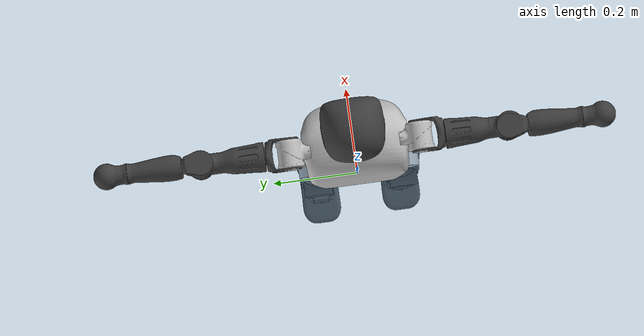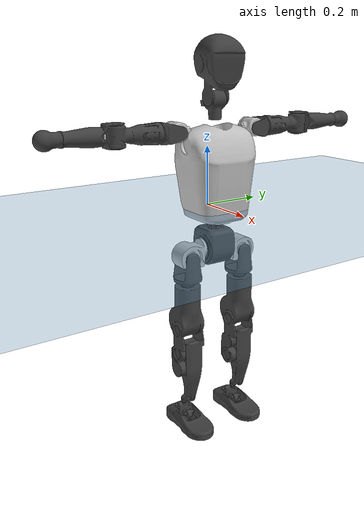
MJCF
<mujoco model="T1">
  <compiler angle="radian" assetdir="assets" balanceinertia="true" inertiafromgeom="false"/>

  <option timestep="0.005" density="1.2" viscosity="2e-05"/>

  <size nkey="1"/>

  <visual>
    <quality shadowsize="8192"/>
    <map shadowclip="0.5"/>
  </visual>

  <default>
    <default class="/">
      <joint armature="0.01" damping="0.01" frictionloss="0.1"/>
      <geom contype="0" conaffinity="0" group="1" solref="-1000 -80"/>
      <site size="0.01 0.005 0.005" group="5"/>
      <general forcelimited="true" biastype="affine" gainprm="25" biasprm="0 -25 -0.6"/>
      <default class="t1">
        <geom rgba="0.25 0.25 0.25 1"/>
        <default class="visual">
          <geom type="mesh" group="2"/>
        </default>
        <default class="collision">
          <geom group="3"/>
        </default>
        <default class="foot">
          <geom size="0.1115 0.05 0.015" type="box" condim="6" group="4" priority="1" solimp="0.015 1 0.015"/>
        </default>
        <default class="reward_collision_sphere">
          <geom group="5" rgba="1 0 0 1"/>
        </default>
      </default>
    </default>
  </default>

  <asset>
    <texture type="skybox" colorspace="auto" name="//unnamed_texture_0" builtin="gradient" rgb1="0.95 0.95 0.95" rgb2="0.95 0.95 0.95" width="100" height="600"/>
    <texture type="2d" colorspace="auto" name="texplane" builtin="checker" rgb1="0.345 0.575 0.748" rgb2="0.345 0.575 0.748" markrgb="1 1 1" width="512" height="512"/>
    <material name="MatPlane" class="/" texture="texplane" texuniform="true" texrepeat="2 2" specular="0.9"/>
    <mesh name="Trunk" class="/" file="Trunk.stl"/>
    <mesh name="H1" class="/" file="H1.stl"/>
    <mesh name="H2" class="/" file="H2.stl"/>
    <mesh name="AL1" class="/" file="AL1.stl"/>
    <mesh name="AL2" class="/" file="AL2.stl"/>
    <mesh name="AL3" class="/" file="AL3.stl"/>
    <mesh name="left_hand_link" class="/" file="left_hand_link.stl"/>
    <mesh name="AR1" class="/" file="AR1.stl"/>
    <mesh name="AR2" class="/" file="AR2.stl"/>
    <mesh name="AR3" class="/" file="AR3.stl"/>
    <mesh name="right_hand_link" class="/" file="right_hand_link.stl"/>
    <mesh name="Waist" class="/" file="Waist.stl"/>
    <mesh name="Hip_Pitch_Left" class="/" file="Hip_Pitch_Left.stl"/>
    <mesh name="Hip_Roll_Left" class="/" file="Hip_Roll_Left.stl"/>
    <mesh name="Hip_Yaw_Left" class="/" file="Hip_Yaw_Left.stl"/>
    <mesh name="Shank_Left" class="/" file="Shank_Left.stl"/>
    <mesh name="Ankle_Cross_Left" class="/" file="Ankle_Cross_Left.stl"/>
    <mesh name="left_foot_link" class="/" file="left_foot_link.stl"/>
    <mesh name="Hip_Pitch_Right" class="/" file="Hip_Pitch_Right.stl"/>
    <mesh name="Hip_Roll_Right" class="/" file="Hip_Roll_Right.stl"/>
    <mesh name="Hip_Yaw_Right" class="/" file="Hip_Yaw_Right.stl"/>
    <mesh name="Shank_Right" class="/" file="Shank_Right.stl"/>
    <mesh name="Ankle_Cross_Right" class="/" file="Ankle_Cross_Right.stl"/>
    <mesh name="right_foot_link" class="/" file="right_foot_link.stl"/>
  </asset>

  <worldbody>
    <geom name="floor" class="/" size="100 100 0.125" type="plane" group="0" material="MatPlane"/>
    <light name="toplight_shadow" class="/" pos="0 0 5" dir="0.0990148 0.0990148 -0.990148" type="directional" ambient="0.04 0.04 0.04" diffuse="0.55 0.55 0.55" specular="0.12 0.12 0.12"/>
    <light name="toplight_fill" class="/" pos="0 0 5" dir="0.0990148 0.0990148 -0.990148" type="directional" castshadow="false" ambient="0.04 0.04 0.04" diffuse="0.3 0.3 0.3" specular="0.08 0.08 0.08"/>
    <body name="trunk" childclass="t1" pos="0.000501452 -0.00220653 -0.000245958" quat="0.999999 -0.000925616 -0.000120313 -0.000683078">
      <inertial pos="0.0376198 -0.0035692 0.123278" quat="0.999953 -0.000711696 -0.00891287 -0.00385884" mass="10.0808" diaginertia="0.0203892 0.0617509 0.129281"/>
      <joint name="//unnamed_joint_0" type="free" armature="0" damping="0" frictionloss="0"/>
      <geom name="//unnamed_geom_1" class="visual" rgba="0.76 0.76 0.76 1" mesh="Trunk"/>
      <geom name="//unnamed_geom_2" class="collision" size="0.0724099 0.0965465 0.14482" pos="0.0444575 0 0.142912" type="box"/>
      <geom name="//unnamed_geom_3" class="reward_collision_sphere" size="0.111029" pos="0.0444575 0 0.119094"/>
      <geom name="//unnamed_geom_4" class="reward_collision_sphere" size="0.014482" pos="0.0444575 0.0819826 0"/>
      <geom name="//unnamed_geom_5" class="reward_collision_sphere" size="0.014482" pos="0.0444575 -0.0819826 0"/>
      <geom name="//unnamed_geom_6" class="reward_collision_sphere" size="0.014482" pos="0.0444575 0.103202 0.214368"/>
      <geom name="//unnamed_geom_7" class="reward_collision_sphere" size="0.014482" pos="0.0444575 -0.103202 0.214368"/>
      <site name="imu" pos="0.0140073 -0.00118108 -0.014023" size="0.00965465"/>
      <camera name="track" pos="0 -1.929 0" quat="0.707107 0.707107 0 0" mode="trackcom"/>
      <camera name="ego_camera" pos="0.090397 0 0.500193" quat="-0.5 -0.5 0.5 0.5"/>
      <body name="H1" pos="0.0431808 0.00173706 0.290335" quat="1 -0.000437557 -0.000381181 0.000389073">
        <inertial pos="-0.00397278 0.000553362 0.0703052" quat="0.77014 -0.0157598 -0.00460045 0.637663" mass="0.40589" diaginertia="5.4794e-05 0.000185765 0.000340353"/>
        <joint name="AAHead_yaw" pos="0 0 0" axis="0.0101603 -0.0046824 0.999937" stiffness="0.00570287" range="-1.57963 1.58668" armature="0.00835278" damping="0.0110557" frictionloss="0.0954781"/>
        <geom name="//unnamed_geom_8" class="visual" mesh="H1"/>
        <body name="H2" pos="0.00183761 0.0020611 0.07223" quat="1 -9.17164e-05 0.000340404 5.53381e-05">
          <inertial pos="0.00730001 0.00334207 0.118226" quat="0.988426 0.104184 -0.0739158 -0.0818252" mass="0.575461" diaginertia="0.0004751 0.00163601 0.00416171"/>
          <joint name="Head_pitch" pos="0 0 0" axis="0.000274704 -0.999965 0.00834654" stiffness="0.000171727" range="-1.22383 0.348349" armature="0.00858324" damping="0.0108473" frictionloss="0.10356"/>
          <geom name="//unnamed_geom_9" class="visual" mesh="H2"/>
          <geom name="//unnamed_geom_10" class="collision" size="0.0772372" pos="0.00740959 0 0.131003"/>
          <geom name="//unnamed_geom_11" class="reward_collision_sphere" size="0.0868919" pos="0.0148192 0 0.119094"/>
        </body>
      </body>
      <body name="AL1" pos="0.0423272 0.103803 0.259017" quat="1 -0.000115246 0.000226726 -7.87153e-05">
        <inertial pos="-0.00283128 0.0419525 -0.000328016" quat="0.508163 0.49243 -0.504389 0.494849" mass="0.479261" diaginertia="0.000310452 0.0010946 0.000683402"/>
        <joint name="Left_Shoulder_Pitch" pos="0 0 0" axis="-0.0108892 0.999939 0.00178059" stiffness="0.00462198" range="-3.30071 1.17756" armature="0.0100079" damping="0.0101918" frictionloss="0.0990897"/>
        <geom name="//unnamed_geom_12" class="visual" rgba="0.76 0.76 0.76 1" mesh="AL1"/>
        <body name="AL2" pos="0.000210299 0.0453156 -0.00291125" quat="1 1.79982e-05 -0.000163342 -4.12365e-05">
          <inertial pos="0.00498584 0.0343782 -0.0029673" quat="0.48151 0.523385 -0.486648 0.507336" mass="0.141159" diaginertia="8.95597e-05 0.000288829 0.000416866"/>
          <joint name="Left_Shoulder_Roll" pos="0 0 0" axis="-0.99995 0.00126331 0.00988188" range="-1.57148 1.71963" armature="0.00954518" damping="0.0061444" frictionloss="0.0939559"/>
          <geom name="//unnamed_geom_13" class="visual" mesh="AL2"/>
          <body name="AL3" pos="0.00119699 0.0592719 0.00212938" quat="1 3.75311e-06 2.51891e-05 -0.000101481">
            <inertial pos="-0.00320906 0.0821119 -0.000807805" quat="0.701641 0.712484 0.00388304 0.00717256" mass="0.932066" diaginertia="0.00297673 0.0107415 0.00147284"/>
            <joint name="Left_Elbow_Pitch" pos="0 0 0" axis="0.000536577 -0.999997 -0.00256901" range="-2.28901 2.28562" armature="0.00955684" damping="0.0169819" frictionloss="0.106067"/>
            <geom name="//unnamed_geom_14" class="visual" mesh="AL3"/>
            <geom name="//unnamed_geom_15" class="collision" size="0.028964 0.0724099" pos="0 0.0482251 0" quat="0.707105 0.707108 0 0" type="cylinder"/>
            <geom name="//unnamed_geom_16" class="reward_collision_sphere" size="0.0347567"/>
            <body name="left_hand_link" pos="0.00283636 0.144927 0.00337358" quat="1 -0.00031583 8.94827e-05 0.000184064">
              <inertial pos="0.00228898 0.102891 -0.00220732" quat="0.708563 0.705636 4.87041e-05 0.00393671" mass="0.294233" diaginertia="0.00182422 0.00687921 0.000532568"/>
              <joint name="Left_Elbow_Yaw" pos="0 0 0" axis="-0.00705563 -0.00504994 0.999962" range="-2.43232 0.00287872" armature="0.0110704" damping="0.0220502" frictionloss="0.0971262"/>
              <geom name="//unnamed_geom_17" class="visual" mesh="left_hand_link"/>
              <geom name="//unnamed_geom_18" class="collision" size="0.028964 0.0844782" pos="0 0.125385 0" quat="0.707105 0.707108 0 0" type="cylinder"/>
              <geom name="//unnamed_geom_19" class="reward_collision_sphere" size="0.0482733"/>
              <geom name="//unnamed_geom_20" class="reward_collision_sphere" size="0.0337913" pos="0 0.106095 0"/>
              <geom name="//unnamed_geom_21" class="reward_collision_sphere" size="0.0337913" pos="0 0.207368 0"/>
            </body>
          </body>
        </body>
      </body>
      <body name="AR1" pos="0.044138 -0.0999998 0.260894" quat="1 -0.000279429 -2.02001e-05 0.000404081">
        <inertial pos="0.000218638 -0.0453846 0.00180465" quat="0.50409 0.496284 -0.505008 0.494532" mass="0.487917" diaginertia="0.000302512 0.00112121 0.000719887"/>
        <joint name="Right_Shoulder_Pitch" pos="0 0 0" axis="0.000480033 -0.999999 -0.00127958" stiffness="0.000722064" range="-1.17265 3.31858" armature="0.00923495" damping="0.0173928" frictionloss="0.0876576"/>
        <geom name="//unnamed_geom_22" class="visual" rgba="0.76 0.76 0.76 1" mesh="AR1"/>
        <body name="AR2" pos="0.000299794 -0.0462139 -0.00236549" quat="0.999999 -0.00122835 -0.000815248 0.000195524">
          <inertial pos="0.00128632 -0.0355992 0.00032334" quat="0.514375 0.486906 -0.501348 0.496983" mass="0.139271" diaginertia="8.62338e-05 0.000286309 0.000405715"/>
          <joint name="Right_Shoulder_Roll" pos="0 0 0" axis="-0.999992 0.00398964 0.000442594" range="-1.77801 1.53138" armature="0.009754" damping="0" frictionloss="0.101557"/>
          <geom name="//unnamed_geom_23" class="visual" mesh="AR2"/>
          <body name="AR3" pos="-0.00339854 -0.0581124 0.000664995" quat="0.999999 -0.000253335 -0.00126868 -0.000177815">
            <inertial pos="0.00116488 -0.083098 0.00189821" quat="0.706268 0.707941 0.00233631 0.000179426" mass="0.913043" diaginertia="0.00290458 0.010603 0.0014637"/>
            <joint name="Right_Elbow_Pitch" pos="0 0 0" axis="-0.00704191 0.99993 0.00951762" range="-2.29732 2.244" armature="0.00970279" damping="0.00676836" frictionloss="0.106928"/>
            <geom name="//unnamed_geom_24" class="visual" mesh="AR3"/>
            <geom name="//unnamed_geom_25" class="collision" size="0.028964 0.0724099" pos="0 -0.0482251 0" quat="0.707105 0.707108 0 0" type="cylinder"/>
            <geom name="//unnamed_geom_26" class="reward_collision_sphere" size="0.0347567"/>
            <body name="right_hand_link" pos="-0.00358696 -0.14451 0.00219694" quat="0.999999 -0.000232726 -0.00142481 -0.000133151">
              <inertial pos="0.00149585 -0.104418 -0.00172382" quat="0.704845 0.70936 0.00117829 0.00115939" mass="0.290132" diaginertia="0.00175399 0.00641996 0.000518698"/>
              <joint name="Right_Elbow_Yaw" pos="0 0 0" axis="0.000189377 0.000957208 1" range="0.00234621 2.385" armature="0.00911822" damping="0.00878806" frictionloss="0.0963101"/>
              <geom name="//unnamed_geom_27" class="visual" mesh="right_hand_link"/>
              <geom name="//unnamed_geom_28" class="collision" size="0.028964 0.0844782" pos="0 -0.125385 0" quat="0.707105 0.707108 0 0" type="cylinder"/>
              <geom name="//unnamed_geom_29" class="reward_collision_sphere" size="0.0482733"/>
              <geom name="//unnamed_geom_30" class="reward_collision_sphere" size="0.0337913" pos="0 -0.106095 0"/>
              <geom name="//unnamed_geom_31" class="reward_collision_sphere" size="0.0337913" pos="0 -0.207368 0"/>
            </body>
          </body>
        </body>
      </body>
      <body name="Waist" pos="0.0445827 -0.0022646 -0.135005" quat="1 -2.77926e-05 3.43862e-05 -1.99688e-05">
        <inertial pos="0.00200385 0.00224151 0.00968498" quat="0.983785 0.00574326 -0.178571 0.0156835" mass="2.16874" diaginertia="0.00115181 0.00414598 0.0105971"/>
        <joint name="Waist" pos="0 0 0" axis="5.79474e-05 0.00483477 0.999988" range="-1.6091 1.53808" armature="0.00905239" damping="0.00360214" frictionloss="0.108832"/>
        <geom name="//unnamed_geom_32" class="visual" mesh="Waist"/>
        <body name="Hip_Pitch_Left" pos="0.00422903 0.100744 -0.0010637" quat="1 -0.000270226 0.000328711 -0.000128781">
          <inertial pos="-0.000710844 -0.00806023 -0.0241867" quat="0.974631 0.223215 0.015051 0.00655127" mass="0.884008" diaginertia="0.000393525 0.00118782 0.00291844"/>
          <joint name="Left_Hip_Pitch" pos="0 0 0" axis="-0.00344517 0.999893 -0.0142345" stiffness="0.0177549" range="-1.81262 1.6251" armature="0.00956105" damping="0" frictionloss="0.0973464"/>
          <geom name="//unnamed_geom_33" class="visual" rgba="0.76 0.76 0.76 1" mesh="Hip_Pitch_Left"/>
          <body name="Hip_Roll_Left" pos="0.00250268 0.00146135 -0.0269344" quat="1 -4.1645e-05 5.71519e-05 -2.65568e-05">
            <inertial pos="0.00171358 -0.000936959 -0.0666844" quat="0.710345 -0.00360299 -0.00633138 0.703816" mass="0.353323" diaginertia="0.00041349 0.00126684 0.00124204"/>
            <joint name="Left_Hip_Roll" pos="0 0 0" axis="-0.999929 0.00318726 0.0115033" range="-1.60137 0.247958" armature="0.00911465" damping="0.0156179" frictionloss="0.0913617"/>
            <geom name="//unnamed_geom_34" class="visual" mesh="Hip_Roll_Left"/>
            <geom name="//unnamed_geom_35" class="reward_collision_sphere" size="0.0531006"/>
            <body name="Hip_Yaw_Left" pos="0.00196818 0.00206168 -0.0973692" quat="1 -0.000117503 0.000294703 6.67862e-05">
              <inertial pos="-0.00721942 -0.000682183 -0.105451" quat="0.690233 -0.0245726 -0.0326789 0.722431" mass="1.93264" diaginertia="0.00596905 0.0211468 0.006554"/>
              <joint name="Left_Hip_Yaw" pos="0 0 0" axis="-7.22221e-05 -5.23095e-06 -1" stiffness="0.000706949" range="-0.987829 1.03404" armature="0.0109762" damping="0.00700619" frictionloss="0.0985032"/>
              <geom name="//unnamed_geom_36" class="visual" mesh="Hip_Yaw_Left"/>
              <geom name="//unnamed_geom_37" class="collision" size="0.0482733 0.0772372" type="cylinder"/>
              <body name="Shank_Left" pos="-0.0093582 -0.000361311 -0.162044" quat="0.999999 -0.00101311 -4.12919e-05 -0.000172916">
                <inertial pos="-0.00359149 7.59888e-05 -0.150779" quat="0.997693 0.00230421 -0.022203 0.0641108" mass="1.54679" diaginertia="0.00771894 0.0275645 0.0041599"/>
                <joint name="Left_Knee_Pitch" pos="0 0 0" axis="-0.00203239 0.999992 0.0034623" stiffness="0.00699271" range="0.0505176 2.33483" armature="0.00959604" damping="0.00137165" frictionloss="0.0941275"/>
                <geom name="//unnamed_geom_38" class="visual" mesh="Shank_Left"/>
                <geom name="//unnamed_geom_39" class="collision" size="0.0482733 0.0724099" pos="0 0 -0.142912" type="cylinder"/>
                <geom name="//unnamed_geom_40" class="reward_collision_sphere" size="0.0627552"/>
                <body name="Ankle_Cross_Left" pos="-0.00204265 -0.00138993 -0.336292" quat="1 7.34891e-06 -1.12592e-06 6.66178e-06">
                  <inertial pos="-0.00488916 0.00234179 -0.00990231" quat="0.444731 0.549651 0.55138 0.442807" mass="0.0636843" diaginertia="6.69766e-06 2.09601e-05 2.7315e-05"/>
                  <joint name="Left_Ankle_Pitch" pos="0 0 0" axis="-0.0010595 0.999917 -0.0128753" stiffness="0.00594377" range="-0.926049 0.345263" armature="0.00836175" damping="0.0164688" frictionloss="0.108714"/>
                  <geom name="//unnamed_geom_41" class="visual" mesh="Ankle_Cross_Left"/>
                  <body name="left_foot_link" pos="-0.000961889 0.00199365 -0.0128122" quat="1 0.000202391 -0.000696595 -0.000676791">
                    <inertial pos="-0.00240324 0.000601681 -0.0121426" quat="0.00481869 0.629276 0.000996968 0.777166" mass="0.602128" diaginertia="0.000627931 0.00200568 0.00547828"/>
                    <joint name="Left_Ankle_Roll" pos="0 0 0" axis="-0.999989 0.00392473 0.00268132" range="-0.490778 0.395898" armature="0.0109432" damping="0.0191625" frictionloss="0.0850899"/>
                    <geom name="//unnamed_geom_42" class="visual" mesh="left_foot_link"/>
                    <geom name="left_foot" class="foot" size="0.105275 0.0439593 0.0152712" pos="0.00740959 0 -0.017864"/>
                    <geom name="//unnamed_geom_44" class="reward_collision_sphere" size="0.0502042" pos="0.00740959 0 -0.017864"/>
                    <geom name="//unnamed_geom_45" class="reward_collision_sphere" size="0.028964" pos="0.0703911 -0.0221835 -0.017864"/>
                    <geom name="//unnamed_geom_46" class="reward_collision_sphere" size="0.028964" pos="-0.0518671 -0.0221835 -0.017864"/>
                    <site name="left_foot" class="foot" pos="0.00740959 0 -0.017864" size="0.00965465"/>
                  </body>
                </body>
              </body>
            </body>
          </body>
        </body>
        <body name="Hip_Pitch_Right" pos="-0.000673121 -0.105237 0.000760011" quat="0.999999 -0.000730419 -0.000362518 -0.000750196">
          <inertial pos="0.00171398 0.00452548 -0.0186049" quat="0.974388 -0.224292 0.0143507 -0.0074026" mass="0.918561" diaginertia="0.000408211 0.00126765 0.00311338"/>
          <joint name="Right_Hip_Pitch" pos="0 0 0" axis="0.00128586 -0.999998 0.00156068" range="-1.59466 1.78554" armature="0.0111343" damping="0.00685889" frictionloss="0.0884586"/>
          <geom name="//unnamed_geom_47" class="visual" rgba="0.76 0.76 0.76 1" mesh="Hip_Pitch_Right"/>
          <body name="Hip_Roll_Right" pos="0.00176754 -0.00242069 -0.0256782" quat="1 -0.000126074 3.4193e-05 7.13551e-07">
            <inertial pos="0.00196719 0.00114607 -0.0610455" quat="0.708323 -0.00352271 -0.00589289 0.705855" mass="0.367566" diaginertia="0.00040059 0.00135222 0.001265"/>
            <joint name="Right_Hip_Roll" pos="0 0 0" axis="-0.999904 -0.00134405 -0.0137974" stiffness="0.00628235" range="-0.202531 1.53572" armature="0.00917311" damping="0" frictionloss="0.0863786"/>
            <geom name="//unnamed_geom_48" class="visual" mesh="Hip_Roll_Right"/>
            <geom name="//unnamed_geom_49" class="reward_collision_sphere" size="0.0531006"/>
            <body name="Hip_Yaw_Right" pos="0.00214042 -0.00337123 -0.0954514" quat="0.999999 -0.000664565 8.54516e-05 0.000835376">
              <inertial pos="-0.00400444 -0.00340827 -0.103687" quat="0.716506 -0.0371766 -0.0375872 0.695575" mass="1.98643" diaginertia="0.00560924 0.0217707 0.00605206"/>
              <joint name="Right_Hip_Yaw" pos="0 0 0" axis="-0.00601621 -0.00215855 -0.99998" stiffness="0.0130872" range="-1.01046 1.00157" armature="0.00820305" damping="0.0163589" frictionloss="0.0917165"/>
              <geom name="//unnamed_geom_50" class="visual" mesh="Hip_Yaw_Right"/>
              <geom name="//unnamed_geom_51" class="collision" size="0.0482733 0.0772372" type="cylinder"/>
              <body name="Shank_Right" pos="-0.00831506 0.0021453 -0.161227" quat="0.999999 -0.000709727 -0.000811974 -0.00100645">
                <inertial pos="-0.00238292 -0.00139225 -0.146446" quat="0.999154 -0.00746514 -0.0308827 -0.0261198" mass="1.54457" diaginertia="0.00798021 0.0284441 0.00477572"/>
                <joint name="Right_Knee_Pitch" pos="0 0 0" axis="0.000839483 -0.999999 -0.00141884" range="-2.35081 0.0538755" armature="0.00954803" damping="0.0205252" frictionloss="0.100232"/>
                <geom name="//unnamed_geom_52" class="visual" mesh="Shank_Right"/>
                <geom name="//unnamed_geom_53" class="collision" size="0.0482733 0.0724099" pos="0 0 -0.142912" type="cylinder"/>
                <geom name="//unnamed_geom_54" class="reward_collision_sphere" size="0.0627552"/>
                <body name="Ankle_Cross_Right" pos="0.00322149 0.00130221 -0.334808" quat="0.999999 -0.000444899 0.00109557 -0.000478803">
                  <inertial pos="-0.00155565 0.00299616 -0.00942857" quat="0.443219 0.551078 0.550937 0.4431" mass="0.0660716" diaginertia="6.38692e-06 2.15469e-05 2.62796e-05"/>
                  <joint name="Right_Ankle_Pitch" pos="0 0 0" axis="0.00997337 -0.999917 -0.00813285" stiffness="0.00308182" range="-0.377813 0.868974" armature="0.0091736" damping="0.0098652" frictionloss="0.100963"/>
                  <geom name="//unnamed_geom_55" class="visual" mesh="Ankle_Cross_Right"/>
                  <body name="right_foot_link" pos="0.00336307 -0.00168609 -0.0125636" quat="1 -2.12909e-05 -3.82466e-05 -3.12191e-05">
                    <inertial pos="-0.000152189 0.00267499 -0.0111323" quat="0.00249929 0.6267 0.00719226 0.779224" mass="0.648409" diaginertia="0.000623256 0.00205333 0.0054854"/>
                    <joint name="Right_Ankle_Roll" pos="0 0 0" axis="-1 -0.000790963 -0.000502011" stiffness="0.00114704" range="-0.425527 0.389054" armature="0.00934155" damping="0.00716642" frictionloss="0.0871937"/>
                    <geom name="//unnamed_geom_56" class="visual" mesh="right_foot_link"/>
                    <geom name="right_foot" class="foot" size="0.0977621 0.0493214 0.0150643" pos="0.00740959 0 -0.017864"/>
                    <geom name="//unnamed_geom_58" class="reward_collision_sphere" size="0.0386186"/>
                    <geom name="//unnamed_geom_59" class="reward_collision_sphere" size="0.028964" pos="0.00740959 0 -0.017864"/>
                    <geom name="//unnamed_geom_60" class="reward_collision_sphere" size="0.028964" pos="0.0703911 0.0221835 -0.017864"/>
                    <geom name="//unnamed_geom_61" class="reward_collision_sphere" size="0.028964" pos="-0.0518671 0.0221835 -0.017864"/>
                    <site name="right_foot" class="foot" pos="0.00740959 0 -0.017864" size="0.00965465"/>
                  </body>
                </body>
              </body>
            </body>
          </body>
        </body>
      </body>
    </body>
  </worldbody>

  <contact>
    <pair class="/" geom1="floor" geom2="left_foot" name="//unnamed_contact_0"/>
    <pair class="/" geom1="floor" geom2="right_foot" name="//unnamed_contact_1"/>
  </contact>

  <actuator>
    <general name="AAHead_yaw" class="/" joint="AAHead_yaw" forcerange="-6.59674 6.59674" gainprm="22.9567" biasprm="0 -22.9567 -0.603137"/>
    <general name="Head_pitch" class="/" joint="Head_pitch" forcerange="-6.93354 6.93354" gainprm="22.9567" biasprm="0 -22.9567 -0.603137"/>
    <general name="Left_Shoulder_Pitch" class="/" joint="Left_Shoulder_Pitch" forcerange="-16.4319 16.4319" gainprm="22.9567" biasprm="0 -22.9567 -0.603137"/>
    <general name="Left_Shoulder_Roll" class="/" joint="Left_Shoulder_Roll" forcerange="-16.9051 16.9051" gainprm="22.9567" biasprm="0 -22.9567 -0.603137"/>
    <general name="Left_Elbow_Pitch" class="/" joint="Left_Elbow_Pitch" forcerange="-16.0638 16.0638" gainprm="22.9567" biasprm="0 -22.9567 -0.603137"/>
    <general name="Left_Elbow_Yaw" class="/" joint="Left_Elbow_Yaw" forcerange="-17.2934 17.2934" gainprm="22.9567" biasprm="0 -22.9567 -0.603137"/>
    <general name="Right_Shoulder_Pitch" class="/" joint="Right_Shoulder_Pitch" forcerange="-17.8246 17.8246" gainprm="22.9567" biasprm="0 -22.9567 -0.603137"/>
    <general name="Right_Shoulder_Roll" class="/" joint="Right_Shoulder_Roll" forcerange="-17.2992 17.2992" gainprm="22.9567" biasprm="0 -22.9567 -0.603137"/>
    <general name="Right_Elbow_Pitch" class="/" joint="Right_Elbow_Pitch" forcerange="-15.834 15.834" gainprm="22.9567" biasprm="0 -22.9567 -0.603137"/>
    <general name="Right_Elbow_Yaw" class="/" joint="Right_Elbow_Yaw" forcerange="-15.7476 15.7476" gainprm="22.9567" biasprm="0 -22.9567 -0.603137"/>
    <general name="Waist" class="/" joint="Waist" forcerange="-26.5964 26.5964" gainprm="22.9567" biasprm="0 -22.9567 -0.603137"/>
    <general name="Left_Hip_Pitch" class="/" joint="Left_Hip_Pitch" forcerange="-44.7704 44.7704" gainprm="22.9567" biasprm="0 -22.9567 -0.603137"/>
    <general name="Left_Hip_Roll" class="/" joint="Left_Hip_Roll" forcerange="-26.5367 26.5367" gainprm="22.9567" biasprm="0 -22.9567 -0.603137"/>
    <general name="Left_Hip_Yaw" class="/" joint="Left_Hip_Yaw" forcerange="-26.5163 26.5163" gainprm="22.9567" biasprm="0 -22.9567 -0.603137"/>
    <general name="Left_Knee_Pitch" class="/" joint="Left_Knee_Pitch" forcerange="-60.7045 60.7045" gainprm="22.9567" biasprm="0 -22.9567 -0.603137"/>
    <general name="Left_Ankle_Pitch" class="/" joint="Left_Ankle_Pitch" forcerange="-20.8287 20.8287" gainprm="22.9567" biasprm="0 -22.9567 -0.603137"/>
    <general name="Left_Ankle_Roll" class="/" joint="Left_Ankle_Roll" forcerange="-13.1158 13.1158" gainprm="22.9567" biasprm="0 -22.9567 -0.603137"/>
    <general name="Right_Hip_Pitch" class="/" joint="Right_Hip_Pitch" forcerange="-42.728 42.728" gainprm="22.9567" biasprm="0 -22.9567 -0.603137"/>
    <general name="Right_Hip_Roll" class="/" joint="Right_Hip_Roll" forcerange="-31.6348 31.6348" gainprm="22.9567" biasprm="0 -22.9567 -0.603137"/>
    <general name="Right_Hip_Yaw" class="/" joint="Right_Hip_Yaw" forcerange="-25.917 25.917" gainprm="22.9567" biasprm="0 -22.9567 -0.603137"/>
    <general name="Right_Knee_Pitch" class="/" joint="Right_Knee_Pitch" forcerange="-51.7563 51.7563" gainprm="22.9567" biasprm="0 -22.9567 -0.603137"/>
    <general name="Right_Ankle_Pitch" class="/" joint="Right_Ankle_Pitch" forcerange="-19.6676 19.6676" gainprm="22.9567" biasprm="0 -22.9567 -0.603137"/>
    <general name="Right_Ankle_Roll" class="/" joint="Right_Ankle_Roll" forcerange="-15.9723 15.9723" gainprm="22.9567" biasprm="0 -22.9567 -0.603137"/>
  </actuator>

  <sensor>
    <gyro site="imu" name="imu_angular_velocity"/>
    <velocimeter site="imu" name="imu_linear_velocity"/>
    <framelinvel objtype="site" objname="left_foot" name="left_foot_global_linear_velocity"/>
    <framelinvel objtype="site" objname="right_foot" name="right_foot_global_linear_velocity"/>
  </sensor>

  <keyframe>
    <key name="home" qpos="0 0 0.6385 1 0 0 0 0 0 0 1.4 0 -0.4 0 -1.4 0 0.4 0 -0.4 0 0 0.8 -0.4 0 0.4 0 0 -0.8 0.4 0"/>
  </keyframe>
</mujoco>
